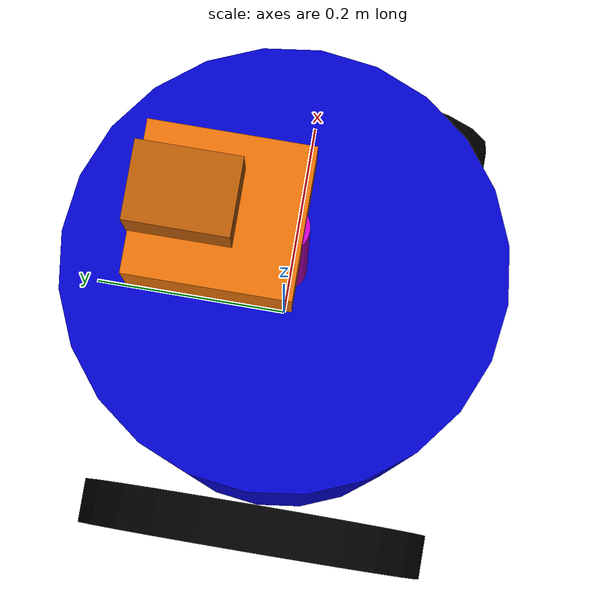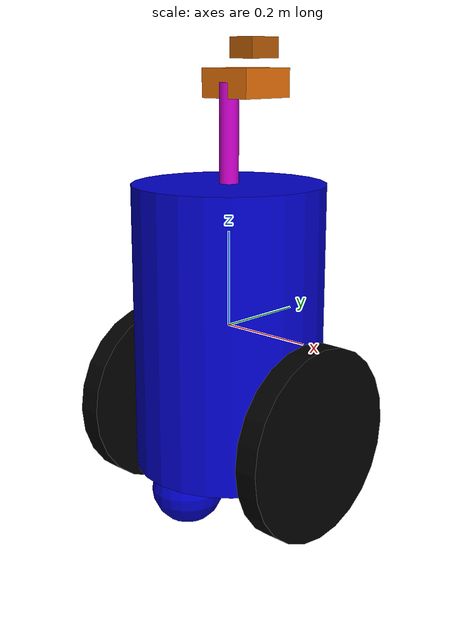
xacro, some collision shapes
<robot xmlns:xacro="http://www.ros.org/wiki/xacro" name="cylbot">
  <!-- Gazebo-customization elements -->
  <xacro:include filename="$(find cylbot_description)/urdf/cylbot_base.gazebo"/>

  <xacro:include filename="$(find cylbot_description)/urdf/cylbot_base.urdf" />
  <xacro:include filename="$(find cylbot_description)/urdf/multisense_sl_v3.urdf" />

</robot>

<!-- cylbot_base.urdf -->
<robot name="cylbot">
  <link name="base_link">
    <visual>
      <geometry>
        <cylinder length="0.6" radius="0.2"/>
      </geometry>
      <material name="blue">
        <color rgba="0 0 .8 1"/>
      </material>
    </visual>
	<collision>
	  <geometry>
		<cylinder length="0.6" radius="0.2"/>
	  </geometry>
	</collision>
	<inertial>
	  <mass value="10"/>
	  <inertia ixx="0.4" ixy="0.0" ixz="0.0" iyy="0.4" iyz="0.0" izz="0.2"/>
	</inertial>
  </link>

  <link name="head_pole">
	<visual>
	  <geometry>
		<cylinder length=".2" radius=".02"/>
	  </geometry>
	  <material name="purple">
		<color rgba=".8 0 .8 1"/>
	  </material>
	</visual>
	<inertial>
	  <mass value=".1"/>
	  <inertia ixx="0.0004477824078" ixy="0.0" ixz="0.0" iyy="0.0004477824078" iyz="0.0" izz="0.0000066667356"/>
	</inertial>
  </link>

  <joint name="base_to_head_pole" type="fixed">
	<parent link="base_link"/>
	<child link="head_pole"/>
	<origin xyz="0 0 .4"/>
  </joint>

  <link name="right_wheel">
	<visual>
	  <geometry>
		<cylinder length=".05" radius=".2"/>
	  </geometry>
	  <material name="black">
		<color rgba="0 0 0 1"/>
	  </material>
	</visual>
	<collision>
	  <geometry>
		<cylinder length=".05" radius=".2"/>
	  </geometry>
	</collision>
	<inertial>
	  <mass value="1.5"/>
	  <inertia ixx=".01625" ixy="0.0" ixz="0.0" iyy=".01625" iyz="0.0" izz=".03"/>
	</inertial>
  </link>

  <joint name="right_wheel_joint" type="continuous">
	<parent link="base_link"/>
	<child link="right_wheel"/>
	<origin xyz=".23 0 -.2" rpy="0 1.57075 0"/>
	<axis xyz="0 0 1"/>
  </joint>

  <link name="left_wheel">
	<visual>
	  <geometry>
		<cylinder length=".05" radius=".2"/>
	  </geometry>
	  <material name="black">
		<color rgba="0 0 0 1"/>
	  </material>
	</visual>
	<collision>
	  <geometry>
		<cylinder length=".05" radius=".2"/>
	  </geometry>
	</collision>
	<inertial>
	  <mass value="1.5"/>
	  <inertia ixx=".01625" ixy="0.0" ixz="0.0" iyy=".01625" iyz="0.0" izz=".03"/>
	</inertial>
  </link>

  <joint name="left_wheel_joint" type="continuous">
	<parent link="base_link"/>
	<child link="left_wheel"/>
	<origin xyz="-.23 0 -.2" rpy="0 1.57075 0"/>
	<axis xyz="0 0 1"/>
  </joint>

  <link name="front_caster">
	<visual>
	  <geometry>
		<sphere radius=".075"/>
	  </geometry>
	  <material name="blue">
		<color rgba="0 0 .8 1"/>
	  </material>
	</visual>
	<collision>
	  <geometry>
		<sphere radius=".075"/>
	  </geometry>
	</collision>
  </link>

  <joint name="base_front_caster" type="fixed">
	<parent link="base_link"/>
	<child link="front_caster"/>
	<origin xyz="0 .125 -.325"/>
  </joint>

  <link name="back_caster">
	<visual>
	  <geometry>
		<sphere radius=".075"/>
	  </geometry>
	  <material name="blue">
		<color rgba="0 0 .8 1"/>
	  </material>
	</visual>
	<collision>
	  <geometry>
		<sphere radius=".075"/>
	  </geometry>
	</collision>
  </link>

  <joint name="base_back_caster" type="fixed">
	<parent link="base_link"/>
	<child link="back_caster"/>
	<origin xyz="0 -.125 -.325"/>
  </joint>

  <link name="head_tilt_link">
	<inertial>
	  <mass value=".1"/>
	  <inertia ixx="0.0004477824078" ixy="0.0" ixz="0.0" iyy="0.0004477824078" iyz="0.0" izz="0.0000066667356"/>
	</inertial>
  </link>

  <link name="head_offset_link">
	<inertial>
	  <mass value=".1"/>
	  <inertia ixx="0.0004477824078" ixy="0.0" ixz="0.0" iyy="0.0004477824078" iyz="0.0" izz="0.0000066667356"/>
	</inertial>
  </link>

  <joint name="head_pan" type="continuous">
	<parent link="head_pole"/>
	<child link="head_tilt_link"/>
	<axis xyz="0 0 1"/>
	<origin xyz="0 0 0" rpy="0 0 0"/>
	<dynamics damping="0.7"/>
  </joint>

  <joint name="head_tilt" type="continuous">
    <parent link="head_tilt_link"/>
    <child link="head_offset_link"/>
	<axis xyz="1 0 0"/>
    <origin xyz="0 0 0" rpy="0 0 0"/>
	<dynamics damping="0.7"/>
  </joint>

  <joint name="head_offset" type="fixed">
	<parent link="head_offset_link"/>
	<child link="head"/>
	<origin xyz="0 .1 .1" rpy="0 0 1.57075"/>
	<dynamics damping="0.7"/>
  </joint>

</robot>

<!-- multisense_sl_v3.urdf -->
<robot name="multisense_sl">
  <!-- Head Link Simple Collision Meshes -->
  <link name="head">
    <inertial>
      <origin xyz="-0.075493 3.3383E-05 0.02774" rpy="0 0 0" />
      <mass value="1.41984" />
      <inertia iyy="0.002080106" ixy="-1.5797E-06" iyz="-6.8415E-07" ixx="0.0036053766" ixz="-0.00089293" izz="0.001782985" />
    </inertial>
    <visual>
      <origin xyz="0 0 0" rpy="0 0 0" />
      <geometry>
        <mesh filename="package://multisense_sl_description/meshes/head.dae" />
      </geometry>
      <material name="">
        <color rgba="0.9098 0.44314 0.031373 1" />
      </material>
    </visual>
  <collision group="default">
    <origin xyz="-0.0503 0 -0.00195" rpy="0 0 0" />
    <geometry>
      <box size="0.1311 0.12 0.0591"/>
    </geometry>
  </collision>
  <collision group="other">
    <origin xyz="-0.093 0 0.0868" rpy="0 0 0" />
    <geometry>
      <box size="0.0468 0.12 0.1184"/>
    </geometry>
  </collision>
  </link>
  <link name="hokuyo_link">
    <inertial>
      <origin xyz="0.012428 0.0004084 -0.0041835" rpy="0 0 0" />
      <mass value="0.057654" />
      <!-- distribute iyy and izz equally between head and hokuyo_link given it's constrainted anyways -->
      <!-- tweak ixx of hokuyo so it's larger, 1/10th of head ixx. -->
      <inertia iyy="0.002080106" ixy="4.9927E-08" iyz="-9.8165E-09" ixx="0.0004005974" ixz="1.1015E-05" izz="0.001782985" />
    </inertial>
    <visual>
      <!--origin xyz="0.065774 -0.001163 -0.08809" rpy="0 0 0" /-->
      <!--origin xyz="0.045 -0.001163 -0.08809" rpy="-0.314 0 0" /-->
      <origin xyz="0.045 -0.0261018277 -0.08342369" rpy="-0.314 0 0" />
      <geometry>
        <mesh filename="package://multisense_sl_description/meshes/head_camera.dae" />
      </geometry>
      <material name="">
        <color rgba="0.72941 0.35686 0.023529 1" />
      </material>
    </visual>
  <collision group="default">
    <origin xyz="0.01885 0 -0.02119" rpy="0 0 0" />
    <geometry>
      <box size="0.08 0.06 0.04238"/>
    </geometry>
  </collision>
  <collision group="other">
    <origin xyz="0.03 0 0.0235" rpy="0 0 0" />
    <geometry>
      <cylinder radius="0.024425" length="0.047"/>
    </geometry>
  </collision>
  </link>
  <gazebo reference="head">
    <mu1>0.9</mu1>
    <mu2>0.9</mu2>
  </gazebo>
  <gazebo reference="hokuyo_link">
    <mu1>0.9</mu1>
    <mu2>0.9</mu2>
  </gazebo>

  <joint name="hokuyo_joint" type="continuous">
    <origin xyz="-0.0446 0 0.0880" rpy="0 0 0" />
    <parent link="head" />
    <child link="hokuyo_link" />
    <axis xyz="1 0 0" />
    <dynamics damping="0.01" friction="0"/>
  </joint>

  <!-- Hokuyo Laser -->
  <joint name="head_hokuyo_joint" type="fixed">
    <axis xyz="0 1 0" />
    <origin xyz="0.03 0 0.015" rpy="0 0 0"/>
    <parent link="hokuyo_link"/>
    <child link="head_hokuyo_frame"/>
  </joint>
  <link name="head_hokuyo_frame">
    <inertial>
      <mass value="1e-5" />
      <!-- collocate with parent link and remove mass from it -->
      <origin xyz="0.042428 0.0004084 0.0108165" rpy="0 0 0"/>
      <inertia ixx="1e-6" ixy="0" ixz="0" iyy="1e-6" iyz="0" izz="1e-6" />
    </inertial>
  </link>
  <gazebo reference="head_hokuyo_frame">
    <sensor type="gpu_ray" name="head_hokuyo_sensor">
      <pose>0 0 0 0 0 0</pose>
      <visualize>false</visualize>
      <update_rate>40</update_rate>
      <ray>
        <scan>
          <horizontal>
            <samples>720</samples>
            <resolution>1</resolution>
            <min_angle>-1.570796</min_angle>
            <max_angle>1.570796</max_angle>
          </horizontal>
        </scan>
        <range>
          <min>0.10</min>
          <max>30.0</max>
          <resolution>0.01</resolution>
        </range>
        <noise>
          <type>gaussian</type>
          <mean>0.0</mean>
          <stddev>0.01</stddev>
        </noise>
      </ray>
      <plugin name="gazebo_ros_head_hokuyo_controller" filename="libgazebo_ros_gpu_laser.so">
        <topicName>/laser/scan</topicName>
        <frameName>head_hokuyo_frame</frameName>
      </plugin>
    </sensor>
  </gazebo>
  <!-- Stereo Camera -->
  <joint name="left_camera_frame_joint" type="fixed">
    <!-- optical frame collocated with tilting DOF -->
    <origin xyz="0.0 0.035 -0.002"/>
    <parent link="head"/>
    <child link="left_camera_frame"/>
  </joint>
  <link name="left_camera_frame">
    <inertial>
      <mass value="1e-5" />
      <!-- collocate with parent link and remove mass from it -->
      <origin xyz="-0.075493 0.035033383 0.02574"/>
      <inertia ixx="1e-6" ixy="0" ixz="0" iyy="1e-6" iyz="0" izz="1e-6" />
    </inertial>
  </link>
  <joint name="left_camera_optical_frame_joint" type="fixed">
    <origin xyz="0 0 0" rpy="-1.5708 0.0 -1.5708" />
    <parent link="left_camera_frame" />
    <child link="left_camera_optical_frame"/>
  </joint>
  <link name="left_camera_optical_frame"/>
  <gazebo reference="left_camera_frame">
    <sensor type="multicamera" name="stereo_camera">
      <!-- see MultiSenseSLPlugin.h for available modes -->
      <update_rate>30.0</update_rate>
      <camera name="left">
        <!-- Spec sheet says 80deg X 45deg @ 1024x544pix.  Based on feedback
             from teams, we're instead doing 80deg X 80deg @ 800x800pix. -->
        <horizontal_fov>1.3962634</horizontal_fov>
        <image>
          <width>800</width>
          <height>800</height>
          <format>R8G8B8</format>
        </image>
        <clip>
          <near>0.02</near>
          <far>300</far>
        </clip>
        <noise>
          <type>gaussian</type>
          <mean>0.0</mean>
          <stddev>0.007</stddev>
        </noise>
      </camera>
      <camera name="right">
        <pose>0 -0.07 0 0 0 0</pose>
        <!-- Spec sheet says 80deg X 45deg @ 1024x544pix.  Based on feedback
             from teams, we're instead doing 80deg X 80deg @ 800x800pix. -->
        <horizontal_fov>1.3962634</horizontal_fov>
        <image>
          <width>800</width>
          <height>800</height>
          <format>R8G8B8</format>
        </image>
        <clip>
          <near>0.02</near>
          <far>300</far>
        </clip>
        <noise>
          <type>gaussian</type>
          <mean>0.0</mean>
          <stddev>0.007</stddev>
        </noise>
      </camera>
      <plugin name="stereo_camera_controller" filename="libgazebo_ros_multicamera.so">
        <alwaysOn>true</alwaysOn>
        <updateRate>0.0</updateRate>
        <cameraName>multisense_sl</cameraName>
        <imageTopicName>image_raw</imageTopicName>
        <cameraInfoTopicName>camera_info</cameraInfoTopicName>
        <frameName>left_camera_optical_frame</frameName>
        <hackBaseline>0.07</hackBaseline>
        <distortionK1>0.0</distortionK1>
        <distortionK2>0.0</distortionK2>
        <distortionK3>0.0</distortionK3>
        <distortionT1>0.0</distortionT1>
        <distortionT2>0.0</distortionT2>
      </plugin>
    </sensor>
  </gazebo>

  <joint name="right_camera_frame_joint" type="fixed">
    <origin xyz="0.0 -0.035 -0.002"/>
    <parent link="head"/>
    <child link="right_camera_frame"/>
  </joint>
  <link name="right_camera_frame">
    <inertial>
      <mass value="1e-5" />
      <!-- collocate with parent link and remove mass from it -->
      <origin xyz="-0.075493 -0.034966617 0.02574"/>
      <inertia ixx="1e-6" ixy="0" ixz="0" iyy="1e-6" iyz="0" izz="1e-6" />
    </inertial>
  </link>
  <joint name="right_camera_optical_frame_joint" type="fixed">
    <origin xyz="0 0 0" rpy="-1.5708 0.0 -1.5708" />
    <parent link="right_camera_frame" />
    <child link="right_camera_optical_frame"/>
  </joint>
  <link name="right_camera_optical_frame"/>

  <joint name="center_top_led_frame_joint" type="fixed">
    <origin xyz="0.01125 0.0 0.0105"/>
    <parent link="head"/>
    <child link="center_top_led_frame"/>
  </joint>
  <link name="center_top_led_frame">
    <inertial>
      <mass value="1e-5" />
      <!-- collocate with parent link and remove mass from it -->
      <origin xyz="-0.064243 0.000033383 0.03824" rpy="0 0 0" />
      <inertia ixx="1e-6" ixy="0" ixz="0" iyy="1e-6" iyz="0" izz="1e-6" />
    </inertial>
  </link>
  <joint name="center_bottom_led_frame_joint" type="fixed">
    <origin xyz="0.01125 0.0 -0.0155"/>
    <parent link="head"/>
    <child link="center_bottom_led_frame"/>
  </joint>
  <link name="center_bottom_led_frame">
    <inertial>
      <mass value="1e-5" />
      <!-- collocate with parent link and remove mass from it -->
      <origin xyz="-0.064243 0.000033383 0.01224" rpy="0 0 0" />
      <inertia ixx="1e-6" ixy="0" ixz="0" iyy="1e-6" iyz="0" izz="1e-6" />
    </inertial>
  </link>
  <joint name="left_led_frame_joint" type="fixed">
    <origin xyz="-0.01443 0.07452 0.050346" rpy="0 -0.15 0.53"/>
    <parent link="head"/>
    <child link="left_led_frame"/>
  </joint>
  <link name="left_led_frame">
    <inertial>
      <mass value="1e-5" />
      <!-- collocate with parent link and remove mass from it -->
      <origin xyz="-0.089923 0.074553383 0.078086" rpy="0 -0.15 0.53" />
      <inertia ixx="1e-6" ixy="0" ixz="0" iyy="1e-6" iyz="0" izz="1e-6" />
    </inertial>
  </link>
  <joint name="right_led_frame_joint" type="fixed">
    <origin xyz="-0.01443 -0.07452 0.050346" rpy="0 -0.15 -0.53"/>
    <parent link="head"/>
    <child link="right_led_frame"/>
  </joint>
  <link name="right_led_frame">
    <inertial>
      <mass value="1e-5" />
      <!-- collocate with parent link and remove mass from it -->
      <origin xyz="-0.089923 -0.074486617 0.07908" rpy="0 -0.15 -0.53" />
      <inertia ixx="1e-6" ixy="0" ixz="0" iyy="1e-6" iyz="0" izz="1e-6" />
    </inertial>
  </link>

  <gazebo>
    <plugin filename="libCustomMultiSenseSLPlugin.so" name="multisense_plugin"/>
  </gazebo>

  <!-- imu link -->
  <link name="head_imu_link">
    <inertial>
      <mass value="1e-5" />
      <!-- collocate with parent link and remove mass from it -->
      <origin xyz="-0.122993 0.035033383 0.02774" rpy="0 0 0" />
      <inertia ixx="1e-6" ixy="0" ixz="0" iyy="1e-6" iyz="0" izz="1e-6" />
    </inertial>
    <visual>
      <origin rpy="0 0 0" xyz="0 0 0"/>
      <geometry>
        <box size="0.01 0.01 0.01"/>
      </geometry>
    </visual>
  </link>
  <joint name="head_imu_joint" type="fixed">
    <parent link="head"/>
    <child link="head_imu_link"/>
    <!-- putting it at the same z-level as the stereo -->
    <origin xyz="-0.0475 0.035 0.0" rpy="0 0 0"/>
  </joint>
  <gazebo reference="head_imu_link">
    <!-- this is expected to be reparented to head with appropriate offset
         when head_imu_link is reduced by fixed joint reduction -->
    <!-- todo: this is working with gazebo 1.4, need to write a unit test -->
    <sensor name="head_imu_sensor" type="imu">
      <always_on>1</always_on>
      <update_rate>1000.0</update_rate>
      <imu>
        <noise>
          <type>gaussian</type>
          <rate>
            <mean>0.0</mean>
            <stddev>2e-4</stddev>
            <bias_mean>0.0000075</bias_mean>
            <bias_stddev>0.0000008</bias_stddev>
          </rate>
          <accel>
            <mean>0.0</mean>
            <stddev>1.7e-2</stddev>
            <bias_mean>0.1</bias_mean>
            <bias_stddev>0.001</bias_stddev>
          </accel>
        </noise>
      </imu>
    </sensor>
  </gazebo>
</robot>
